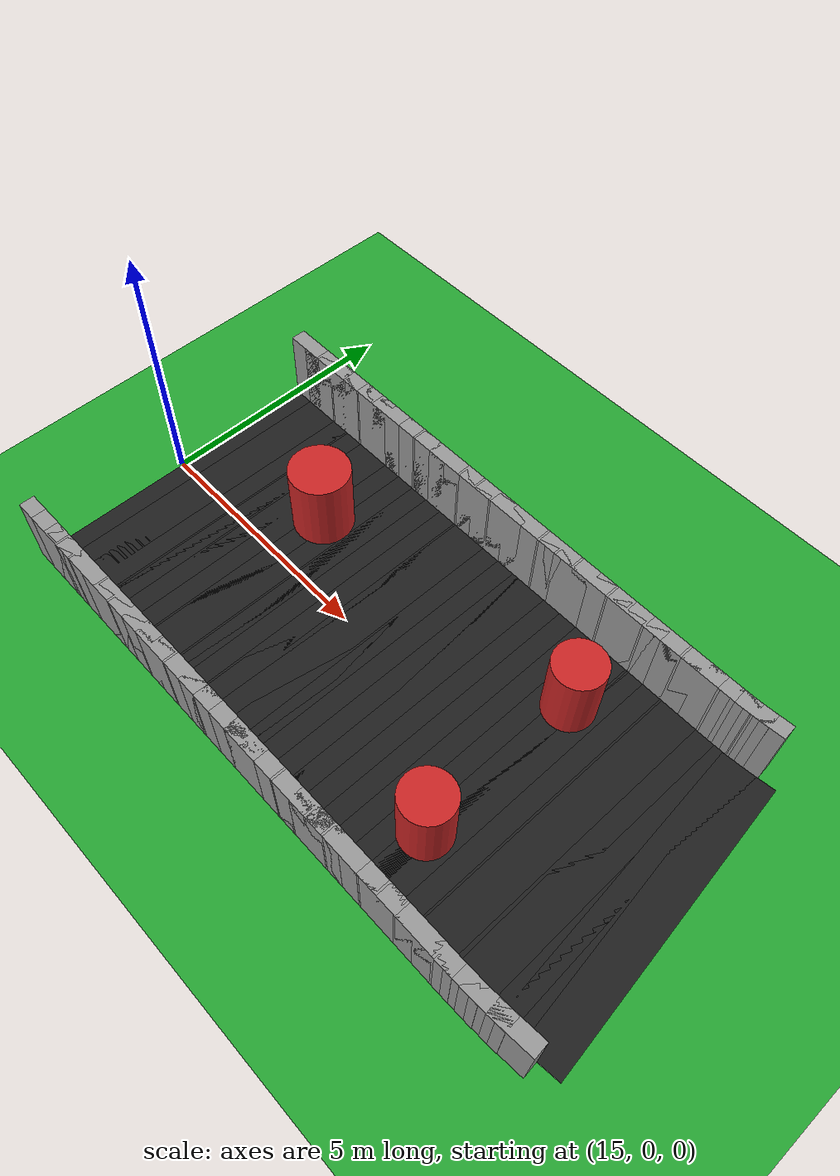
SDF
<sdf version="1.6">
 <world name="obstacle_mid">
  <include><uri>model://sun</uri></include>
  <model name="ground_plane">
   <static>true</static>
   <link name="link">
    <collision name="collision">
     <surface><friction><ode><mu>100</mu><mu2>50</mu2></ode></friction></surface>
     <geometry><plane><normal>0 0 1</normal><size>120 120</size></plane></geometry>
    </collision>
    <visual name="visual">
     <geometry><plane><normal>0 0 1</normal><size>120 120</size></plane></geometry>
     <material>
      <script><uri>file://media/materials/scripts/gazebo.material</uri><name>Gazebo/Green</name></script>
     </material>
    </visual>
   </link>
  </model>
  <model name="asphalt_38">
   <static>true</static>
   <pose>15.400 0.000 0.005 0 0 0.00000</pose>
   <link name="link">
    <visual name="visual">
     <geometry><box><size>0.760 6.000 0.010</size></box></geometry>
     <material>
      <script><uri>file://media/materials/scripts/gazebo.material</uri><name>Gazebo/Black</name></script>
     </material>
    </visual>
   </link>
  </model>
  <model name="curbL_38">
   <static>true</static>
   <pose>15.400 3.150 0.750 0 0 0.00000</pose>
   <link name="link">
    <collision name="collision"><geometry><box><size>0.760 0.300 1.500</size></box></geometry></collision>
    <visual name="visual">
     <geometry><box><size>0.760 0.300 1.500</size></box></geometry>
     <material>
      <script><uri>file://media/materials/scripts/gazebo.material</uri><name>Gazebo/Grey</name></script>
     </material>
    </visual>
   </link>
  </model>
  <model name="curbR_38">
   <static>true</static>
   <pose>15.400 -3.150 0.750 0 0 0.00000</pose>
   <link name="link">
    <collision name="collision"><geometry><box><size>0.760 0.300 1.500</size></box></geometry></collision>
    <visual name="visual">
     <geometry><box><size>0.760 0.300 1.500</size></box></geometry>
     <material>
      <script><uri>file://media/materials/scripts/gazebo.material</uri><name>Gazebo/Grey</name></script>
     </material>
    </visual>
   </link>
  </model>
  <model name="asphalt_39">
   <static>true</static>
   <pose>15.800 0.000 0.005 0 0 0.00000</pose>
   <link name="link">
    <visual name="visual">
     <geometry><box><size>0.760 6.000 0.010</size></box></geometry>
     <material>
      <script><uri>file://media/materials/scripts/gazebo.material</uri><name>Gazebo/Black</name></script>
     </material>
    </visual>
   </link>
  </model>
  <model name="curbL_39">
   <static>true</static>
   <pose>15.800 3.150 0.750 0 0 0.00000</pose>
   <link name="link">
    <collision name="collision"><geometry><box><size>0.760 0.300 1.500</size></box></geometry></collision>
    <visual name="visual">
     <geometry><box><size>0.760 0.300 1.500</size></box></geometry>
     <material>
      <script><uri>file://media/materials/scripts/gazebo.material</uri><name>Gazebo/Grey</name></script>
     </material>
    </visual>
   </link>
  </model>
  <model name="curbR_39">
   <static>true</static>
   <pose>15.800 -3.150 0.750 0 0 0.00000</pose>
   <link name="link">
    <collision name="collision"><geometry><box><size>0.760 0.300 1.500</size></box></geometry></collision>
    <visual name="visual">
     <geometry><box><size>0.760 0.300 1.500</size></box></geometry>
     <material>
      <script><uri>file://media/materials/scripts/gazebo.material</uri><name>Gazebo/Grey</name></script>
     </material>
    </visual>
   </link>
  </model>
  <model name="asphalt_40">
   <static>true</static>
   <pose>16.200 0.000 0.005 0 0 0.00000</pose>
   <link name="link">
    <visual name="visual">
     <geometry><box><size>0.760 6.000 0.010</size></box></geometry>
     <material>
      <script><uri>file://media/materials/scripts/gazebo.material</uri><name>Gazebo/Black</name></script>
     </material>
    </visual>
   </link>
  </model>
  <model name="curbL_40">
   <static>true</static>
   <pose>16.200 3.150 0.750 0 0 0.00000</pose>
   <link name="link">
    <collision name="collision"><geometry><box><size>0.760 0.300 1.500</size></box></geometry></collision>
    <visual name="visual">
     <geometry><box><size>0.760 0.300 1.500</size></box></geometry>
     <material>
      <script><uri>file://media/materials/scripts/gazebo.material</uri><name>Gazebo/Grey</name></script>
     </material>
    </visual>
   </link>
  </model>
  <model name="curbR_40">
   <static>true</static>
   <pose>16.200 -3.150 0.750 0 0 0.00000</pose>
   <link name="link">
    <collision name="collision"><geometry><box><size>0.760 0.300 1.500</size></box></geometry></collision>
    <visual name="visual">
     <geometry><box><size>0.760 0.300 1.500</size></box></geometry>
     <material>
      <script><uri>file://media/materials/scripts/gazebo.material</uri><name>Gazebo/Grey</name></script>
     </material>
    </visual>
   </link>
  </model>
  <model name="asphalt_41">
   <static>true</static>
   <pose>16.600 0.000 0.005 0 0 0.00000</pose>
   <link name="link">
    <visual name="visual">
     <geometry><box><size>0.760 6.000 0.010</size></box></geometry>
     <material>
      <script><uri>file://media/materials/scripts/gazebo.material</uri><name>Gazebo/Black</name></script>
     </material>
    </visual>
   </link>
  </model>
  <model name="curbL_41">
   <static>true</static>
   <pose>16.600 3.150 0.750 0 0 0.00000</pose>
   <link name="link">
    <collision name="collision"><geometry><box><size>0.760 0.300 1.500</size></box></geometry></collision>
    <visual name="visual">
     <geometry><box><size>0.760 0.300 1.500</size></box></geometry>
     <material>
      <script><uri>file://media/materials/scripts/gazebo.material</uri><name>Gazebo/Grey</name></script>
     </material>
    </visual>
   </link>
  </model>
  <model name="curbR_41">
   <static>true</static>
   <pose>16.600 -3.150 0.750 0 0 0.00000</pose>
   <link name="link">
    <collision name="collision"><geometry><box><size>0.760 0.300 1.500</size></box></geometry></collision>
    <visual name="visual">
     <geometry><box><size>0.760 0.300 1.500</size></box></geometry>
     <material>
      <script><uri>file://media/materials/scripts/gazebo.material</uri><name>Gazebo/Grey</name></script>
     </material>
    </visual>
   </link>
  </model>
  <model name="asphalt_42">
   <static>true</static>
   <pose>17.000 0.000 0.005 0 0 0.00000</pose>
   <link name="link">
    <visual name="visual">
     <geometry><box><size>0.760 6.000 0.010</size></box></geometry>
     <material>
      <script><uri>file://media/materials/scripts/gazebo.material</uri><name>Gazebo/Black</name></script>
     </material>
    </visual>
   </link>
  </model>
  <model name="curbL_42">
   <static>true</static>
   <pose>17.000 3.150 0.750 0 0 0.00000</pose>
   <link name="link">
    <collision name="collision"><geometry><box><size>0.760 0.300 1.500</size></box></geometry></collision>
    <visual name="visual">
     <geometry><box><size>0.760 0.300 1.500</size></box></geometry>
     <material>
      <script><uri>file://media/materials/scripts/gazebo.material</uri><name>Gazebo/Grey</name></script>
     </material>
    </visual>
   </link>
  </model>
  <model name="curbR_42">
   <static>true</static>
   <pose>17.000 -3.150 0.750 0 0 0.00000</pose>
   <link name="link">
    <collision name="collision"><geometry><box><size>0.760 0.300 1.500</size></box></geometry></collision>
    <visual name="visual">
     <geometry><box><size>0.760 0.300 1.500</size></box></geometry>
     <material>
      <script><uri>file://media/materials/scripts/gazebo.material</uri><name>Gazebo/Grey</name></script>
     </material>
    </visual>
   </link>
  </model>
  <model name="asphalt_43">
   <static>true</static>
   <pose>17.400 0.000 0.005 0 0 0.00000</pose>
   <link name="link">
    <visual name="visual">
     <geometry><box><size>0.760 6.000 0.010</size></box></geometry>
     <material>
      <script><uri>file://media/materials/scripts/gazebo.material</uri><name>Gazebo/Black</name></script>
     </material>
    </visual>
   </link>
  </model>
  <model name="curbL_43">
   <static>true</static>
   <pose>17.400 3.150 0.750 0 0 0.00000</pose>
   <link name="link">
    <collision name="collision"><geometry><box><size>0.760 0.300 1.500</size></box></geometry></collision>
    <visual name="visual">
     <geometry><box><size>0.760 0.300 1.500</size></box></geometry>
     <material>
      <script><uri>file://media/materials/scripts/gazebo.material</uri><name>Gazebo/Grey</name></script>
     </material>
    </visual>
   </link>
  </model>
  <model name="curbR_43">
   <static>true</static>
   <pose>17.400 -3.150 0.750 0 0 0.00000</pose>
   <link name="link">
    <collision name="collision"><geometry><box><size>0.760 0.300 1.500</size></box></geometry></collision>
    <visual name="visual">
     <geometry><box><size>0.760 0.300 1.500</size></box></geometry>
     <material>
      <script><uri>file://media/materials/scripts/gazebo.material</uri><name>Gazebo/Grey</name></script>
     </material>
    </visual>
   </link>
  </model>
  <model name="asphalt_44">
   <static>true</static>
   <pose>17.800 0.000 0.005 0 0 0.00000</pose>
   <link name="link">
    <visual name="visual">
     <geometry><box><size>0.760 6.000 0.010</size></box></geometry>
     <material>
      <script><uri>file://media/materials/scripts/gazebo.material</uri><name>Gazebo/Black</name></script>
     </material>
    </visual>
   </link>
  </model>
  <model name="curbL_44">
   <static>true</static>
   <pose>17.800 3.150 0.750 0 0 0.00000</pose>
   <link name="link">
    <collision name="collision"><geometry><box><size>0.760 0.300 1.500</size></box></geometry></collision>
    <visual name="visual">
     <geometry><box><size>0.760 0.300 1.500</size></box></geometry>
     <material>
      <script><uri>file://media/materials/scripts/gazebo.material</uri><name>Gazebo/Grey</name></script>
     </material>
    </visual>
   </link>
  </model>
  <model name="curbR_44">
   <static>true</static>
   <pose>17.800 -3.150 0.750 0 0 0.00000</pose>
   <link name="link">
    <collision name="collision"><geometry><box><size>0.760 0.300 1.500</size></box></geometry></collision>
    <visual name="visual">
     <geometry><box><size>0.760 0.300 1.500</size></box></geometry>
     <material>
      <script><uri>file://media/materials/scripts/gazebo.material</uri><name>Gazebo/Grey</name></script>
     </material>
    </visual>
   </link>
  </model>
  <model name="asphalt_45">
   <static>true</static>
   <pose>18.200 0.000 0.005 0 0 0.00000</pose>
   <link name="link">
    <visual name="visual">
     <geometry><box><size>0.760 6.000 0.010</size></box></geometry>
     <material>
      <script><uri>file://media/materials/scripts/gazebo.material</uri><name>Gazebo/Black</name></script>
     </material>
    </visual>
   </link>
  </model>
  <model name="curbL_45">
   <static>true</static>
   <pose>18.200 3.150 0.750 0 0 0.00000</pose>
   <link name="link">
    <collision name="collision"><geometry><box><size>0.760 0.300 1.500</size></box></geometry></collision>
    <visual name="visual">
     <geometry><box><size>0.760 0.300 1.500</size></box></geometry>
     <material>
      <script><uri>file://media/materials/scripts/gazebo.material</uri><name>Gazebo/Grey</name></script>
     </material>
    </visual>
   </link>
  </model>
  <model name="curbR_45">
   <static>true</static>
   <pose>18.200 -3.150 0.750 0 0 0.00000</pose>
   <link name="link">
    <collision name="collision"><geometry><box><size>0.760 0.300 1.500</size></box></geometry></collision>
    <visual name="visual">
     <geometry><box><size>0.760 0.300 1.500</size></box></geometry>
     <material>
      <script><uri>file://media/materials/scripts/gazebo.material</uri><name>Gazebo/Grey</name></script>
     </material>
    </visual>
   </link>
  </model>
  <model name="asphalt_46">
   <static>true</static>
   <pose>18.600 0.000 0.005 0 0 0.00000</pose>
   <link name="link">
    <visual name="visual">
     <geometry><box><size>0.760 6.000 0.010</size></box></geometry>
     <material>
      <script><uri>file://media/materials/scripts/gazebo.material</uri><name>Gazebo/Black</name></script>
     </material>
    </visual>
   </link>
  </model>
  <model name="curbL_46">
   <static>true</static>
   <pose>18.600 3.150 0.750 0 0 0.00000</pose>
   <link name="link">
    <collision name="collision"><geometry><box><size>0.760 0.300 1.500</size></box></geometry></collision>
    <visual name="visual">
     <geometry><box><size>0.760 0.300 1.500</size></box></geometry>
     <material>
      <script><uri>file://media/materials/scripts/gazebo.material</uri><name>Gazebo/Grey</name></script>
     </material>
    </visual>
   </link>
  </model>
  <model name="curbR_46">
   <static>true</static>
   <pose>18.600 -3.150 0.750 0 0 0.00000</pose>
   <link name="link">
    <collision name="collision"><geometry><box><size>0.760 0.300 1.500</size></box></geometry></collision>
    <visual name="visual">
     <geometry><box><size>0.760 0.300 1.500</size></box></geometry>
     <material>
      <script><uri>file://media/materials/scripts/gazebo.material</uri><name>Gazebo/Grey</name></script>
     </material>
    </visual>
   </link>
  </model>
  <model name="asphalt_47">
   <static>true</static>
   <pose>19.000 0.000 0.005 0 0 0.00000</pose>
   <link name="link">
    <visual name="visual">
     <geometry><box><size>0.760 6.000 0.010</size></box></geometry>
     <material>
      <script><uri>file://media/materials/scripts/gazebo.material</uri><name>Gazebo/Black</name></script>
     </material>
    </visual>
   </link>
  </model>
  <model name="curbL_47">
   <static>true</static>
   <pose>19.000 3.150 0.750 0 0 0.00000</pose>
   <link name="link">
    <collision name="collision"><geometry><box><size>0.760 0.300 1.500</size></box></geometry></collision>
    <visual name="visual">
     <geometry><box><size>0.760 0.300 1.500</size></box></geometry>
     <material>
      <script><uri>file://media/materials/scripts/gazebo.material</uri><name>Gazebo/Grey</name></script>
     </material>
    </visual>
   </link>
  </model>
  <model name="curbR_47">
   <static>true</static>
   <pose>19.000 -3.150 0.750 0 0 0.00000</pose>
   <link name="link">
    <collision name="collision"><geometry><box><size>0.760 0.300 1.500</size></box></geometry></collision>
    <visual name="visual">
     <geometry><box><size>0.760 0.300 1.500</size></box></geometry>
     <material>
      <script><uri>file://media/materials/scripts/gazebo.material</uri><name>Gazebo/Grey</name></script>
     </material>
    </visual>
   </link>
  </model>
  <model name="asphalt_48">
   <static>true</static>
   <pose>19.400 0.000 0.005 0 0 0.00000</pose>
   <link name="link">
    <visual name="visual">
     <geometry><box><size>0.760 6.000 0.010</size></box></geometry>
     <material>
      <script><uri>file://media/materials/scripts/gazebo.material</uri><name>Gazebo/Black</name></script>
     </material>
    </visual>
   </link>
  </model>
  <model name="curbL_48">
   <static>true</static>
   <pose>19.400 3.150 0.750 0 0 0.00000</pose>
   <link name="link">
    <collision name="collision"><geometry><box><size>0.760 0.300 1.500</size></box></geometry></collision>
    <visual name="visual">
     <geometry><box><size>0.760 0.300 1.500</size></box></geometry>
     <material>
      <script><uri>file://media/materials/scripts/gazebo.material</uri><name>Gazebo/Grey</name></script>
     </material>
    </visual>
   </link>
  </model>
  <model name="curbR_48">
   <static>true</static>
   <pose>19.400 -3.150 0.750 0 0 0.00000</pose>
   <link name="link">
    <collision name="collision"><geometry><box><size>0.760 0.300 1.500</size></box></geometry></collision>
    <visual name="visual">
     <geometry><box><size>0.760 0.300 1.500</size></box></geometry>
     <material>
      <script><uri>file://media/materials/scripts/gazebo.material</uri><name>Gazebo/Grey</name></script>
     </material>
    </visual>
   </link>
  </model>
  <model name="asphalt_49">
   <static>true</static>
   <pose>19.800 0.000 0.005 0 0 0.00000</pose>
   <link name="link">
    <visual name="visual">
     <geometry><box><size>0.760 6.000 0.010</size></box></geometry>
     <material>
      <script><uri>file://media/materials/scripts/gazebo.material</uri><name>Gazebo/Black</name></script>
     </material>
    </visual>
   </link>
  </model>
  <model name="curbL_49">
   <static>true</static>
   <pose>19.800 3.150 0.750 0 0 0.00000</pose>
   <link name="link">
    <collision name="collision"><geometry><box><size>0.760 0.300 1.500</size></box></geometry></collision>
    <visual name="visual">
     <geometry><box><size>0.760 0.300 1.500</size></box></geometry>
     <material>
      <script><uri>file://media/materials/scripts/gazebo.material</uri><name>Gazebo/Grey</name></script>
     </material>
    </visual>
   </link>
  </model>
  <model name="curbR_49">
   <static>true</static>
   <pose>19.800 -3.150 0.750 0 0 0.00000</pose>
   <link name="link">
    <collision name="collision"><geometry><box><size>0.760 0.300 1.500</size></box></geometry></collision>
    <visual name="visual">
     <geometry><box><size>0.760 0.300 1.500</size></box></geometry>
     <material>
      <script><uri>file://media/materials/scripts/gazebo.material</uri><name>Gazebo/Grey</name></script>
     </material>
    </visual>
   </link>
  </model>
  <model name="asphalt_50">
   <static>true</static>
   <pose>20.200 0.000 0.005 0 0 0.00000</pose>
   <link name="link">
    <visual name="visual">
     <geometry><box><size>0.760 6.000 0.010</size></box></geometry>
     <material>
      <script><uri>file://media/materials/scripts/gazebo.material</uri><name>Gazebo/Black</name></script>
     </material>
    </visual>
   </link>
  </model>
  <model name="curbL_50">
   <static>true</static>
   <pose>20.200 3.150 0.750 0 0 0.00000</pose>
   <link name="link">
    <collision name="collision"><geometry><box><size>0.760 0.300 1.500</size></box></geometry></collision>
    <visual name="visual">
     <geometry><box><size>0.760 0.300 1.500</size></box></geometry>
     <material>
      <script><uri>file://media/materials/scripts/gazebo.material</uri><name>Gazebo/Grey</name></script>
     </material>
    </visual>
   </link>
  </model>
  <model name="curbR_50">
   <static>true</static>
   <pose>20.200 -3.150 0.750 0 0 0.00000</pose>
   <link name="link">
    <collision name="collision"><geometry><box><size>0.760 0.300 1.500</size></box></geometry></collision>
    <visual name="visual">
     <geometry><box><size>0.760 0.300 1.500</size></box></geometry>
     <material>
      <script><uri>file://media/materials/scripts/gazebo.material</uri><name>Gazebo/Grey</name></script>
     </material>
    </visual>
   </link>
  </model>
  <model name="asphalt_51">
   <static>true</static>
   <pose>20.600 0.000 0.005 0 0 0.00000</pose>
   <link name="link">
    <visual name="visual">
     <geometry><box><size>0.760 6.000 0.010</size></box></geometry>
     <material>
      <script><uri>file://media/materials/scripts/gazebo.material</uri><name>Gazebo/Black</name></script>
     </material>
    </visual>
   </link>
  </model>
  <model name="curbL_51">
   <static>true</static>
   <pose>20.600 3.150 0.750 0 0 0.00000</pose>
   <link name="link">
    <collision name="collision"><geometry><box><size>0.760 0.300 1.500</size></box></geometry></collision>
    <visual name="visual">
     <geometry><box><size>0.760 0.300 1.500</size></box></geometry>
     <material>
      <script><uri>file://media/materials/scripts/gazebo.material</uri><name>Gazebo/Grey</name></script>
     </material>
    </visual>
   </link>
  </model>
  <model name="curbR_51">
   <static>true</static>
   <pose>20.600 -3.150 0.750 0 0 0.00000</pose>
   <link name="link">
    <collision name="collision"><geometry><box><size>0.760 0.300 1.500</size></box></geometry></collision>
    <visual name="visual">
     <geometry><box><size>0.760 0.300 1.500</size></box></geometry>
     <material>
      <script><uri>file://media/materials/scripts/gazebo.material</uri><name>Gazebo/Grey</name></script>
     </material>
    </visual>
   </link>
  </model>
  <model name="asphalt_52">
   <static>true</static>
   <pose>21.000 0.000 0.005 0 0 0.00000</pose>
   <link name="link">
    <visual name="visual">
     <geometry><box><size>0.760 6.000 0.010</size></box></geometry>
     <material>
      <script><uri>file://media/materials/scripts/gazebo.material</uri><name>Gazebo/Black</name></script>
     </material>
    </visual>
   </link>
  </model>
  <model name="curbL_52">
   <static>true</static>
   <pose>21.000 3.150 0.750 0 0 0.00000</pose>
   <link name="link">
    <collision name="collision"><geometry><box><size>0.760 0.300 1.500</size></box></geometry></collision>
    <visual name="visual">
     <geometry><box><size>0.760 0.300 1.500</size></box></geometry>
     <material>
      <script><uri>file://media/materials/scripts/gazebo.material</uri><name>Gazebo/Grey</name></script>
     </material>
    </visual>
   </link>
  </model>
  <model name="curbR_52">
   <static>true</static>
   <pose>21.000 -3.150 0.750 0 0 0.00000</pose>
   <link name="link">
    <collision name="collision"><geometry><box><size>0.760 0.300 1.500</size></box></geometry></collision>
    <visual name="visual">
     <geometry><box><size>0.760 0.300 1.500</size></box></geometry>
     <material>
      <script><uri>file://media/materials/scripts/gazebo.material</uri><name>Gazebo/Grey</name></script>
     </material>
    </visual>
   </link>
  </model>
  <model name="asphalt_53">
   <static>true</static>
   <pose>21.400 0.000 0.005 0 0 0.00000</pose>
   <link name="link">
    <visual name="visual">
     <geometry><box><size>0.760 6.000 0.010</size></box></geometry>
     <material>
      <script><uri>file://media/materials/scripts/gazebo.material</uri><name>Gazebo/Black</name></script>
     </material>
    </visual>
   </link>
  </model>
  <model name="curbL_53">
   <static>true</static>
   <pose>21.400 3.150 0.750 0 0 0.00000</pose>
   <link name="link">
    <collision name="collision"><geometry><box><size>0.760 0.300 1.500</size></box></geometry></collision>
    <visual name="visual">
     <geometry><box><size>0.760 0.300 1.500</size></box></geometry>
     <material>
      <script><uri>file://media/materials/scripts/gazebo.material</uri><name>Gazebo/Grey</name></script>
     </material>
    </visual>
   </link>
  </model>
  <model name="curbR_53">
   <static>true</static>
   <pose>21.400 -3.150 0.750 0 0 0.00000</pose>
   <link name="link">
    <collision name="collision"><geometry><box><size>0.760 0.300 1.500</size></box></geometry></collision>
    <visual name="visual">
     <geometry><box><size>0.760 0.300 1.500</size></box></geometry>
     <material>
      <script><uri>file://media/materials/scripts/gazebo.material</uri><name>Gazebo/Grey</name></script>
     </material>
    </visual>
   </link>
  </model>
  <model name="asphalt_54">
   <static>true</static>
   <pose>21.800 0.000 0.005 0 0 0.00000</pose>
   <link name="link">
    <visual name="visual">
     <geometry><box><size>0.760 6.000 0.010</size></box></geometry>
     <material>
      <script><uri>file://media/materials/scripts/gazebo.material</uri><name>Gazebo/Black</name></script>
     </material>
    </visual>
   </link>
  </model>
  <model name="curbL_54">
   <static>true</static>
   <pose>21.800 3.150 0.750 0 0 0.00000</pose>
   <link name="link">
    <collision name="collision"><geometry><box><size>0.760 0.300 1.500</size></box></geometry></collision>
    <visual name="visual">
     <geometry><box><size>0.760 0.300 1.500</size></box></geometry>
     <material>
      <script><uri>file://media/materials/scripts/gazebo.material</uri><name>Gazebo/Grey</name></script>
     </material>
    </visual>
   </link>
  </model>
  <model name="curbR_54">
   <static>true</static>
   <pose>21.800 -3.150 0.750 0 0 0.00000</pose>
   <link name="link">
    <collision name="collision"><geometry><box><size>0.760 0.300 1.500</size></box></geometry></collision>
    <visual name="visual">
     <geometry><box><size>0.760 0.300 1.500</size></box></geometry>
     <material>
      <script><uri>file://media/materials/scripts/gazebo.material</uri><name>Gazebo/Grey</name></script>
     </material>
    </visual>
   </link>
  </model>
  <model name="asphalt_55">
   <static>true</static>
   <pose>22.200 0.000 0.005 0 0 0.00000</pose>
   <link name="link">
    <visual name="visual">
     <geometry><box><size>0.760 6.000 0.010</size></box></geometry>
     <material>
      <script><uri>file://media/materials/scripts/gazebo.material</uri><name>Gazebo/Black</name></script>
     </material>
    </visual>
   </link>
  </model>
  <model name="curbL_55">
   <static>true</static>
   <pose>22.200 3.150 0.750 0 0 0.00000</pose>
   <link name="link">
    <collision name="collision"><geometry><box><size>0.760 0.300 1.500</size></box></geometry></collision>
    <visual name="visual">
     <geometry><box><size>0.760 0.300 1.500</size></box></geometry>
     <material>
      <script><uri>file://media/materials/scripts/gazebo.material</uri><name>Gazebo/Grey</name></script>
     </material>
    </visual>
   </link>
  </model>
  <model name="curbR_55">
   <static>true</static>
   <pose>22.200 -3.150 0.750 0 0 0.00000</pose>
   <link name="link">
    <collision name="collision"><geometry><box><size>0.760 0.300 1.500</size></box></geometry></collision>
    <visual name="visual">
     <geometry><box><size>0.760 0.300 1.500</size></box></geometry>
     <material>
      <script><uri>file://media/materials/scripts/gazebo.material</uri><name>Gazebo/Grey</name></script>
     </material>
    </visual>
   </link>
  </model>
  <model name="asphalt_56">
   <static>true</static>
   <pose>22.600 0.000 0.005 0 0 0.00000</pose>
   <link name="link">
    <visual name="visual">
     <geometry><box><size>0.760 6.000 0.010</size></box></geometry>
     <material>
      <script><uri>file://media/materials/scripts/gazebo.material</uri><name>Gazebo/Black</name></script>
     </material>
    </visual>
   </link>
  </model>
  <model name="curbL_56">
   <static>true</static>
   <pose>22.600 3.150 0.750 0 0 0.00000</pose>
   <link name="link">
    <collision name="collision"><geometry><box><size>0.760 0.300 1.500</size></box></geometry></collision>
    <visual name="visual">
     <geometry><box><size>0.760 0.300 1.500</size></box></geometry>
     <material>
      <script><uri>file://media/materials/scripts/gazebo.material</uri><name>Gazebo/Grey</name></script>
     </material>
    </visual>
   </link>
  </model>
  <model name="curbR_56">
   <static>true</static>
   <pose>22.600 -3.150 0.750 0 0 0.00000</pose>
   <link name="link">
    <collision name="collision"><geometry><box><size>0.760 0.300 1.500</size></box></geometry></collision>
    <visual name="visual">
     <geometry><box><size>0.760 0.300 1.500</size></box></geometry>
     <material>
      <script><uri>file://media/materials/scripts/gazebo.material</uri><name>Gazebo/Grey</name></script>
     </material>
    </visual>
   </link>
  </model>
  <model name="asphalt_57">
   <static>true</static>
   <pose>23.000 0.000 0.005 0 0 0.00000</pose>
   <link name="link">
    <visual name="visual">
     <geometry><box><size>0.760 6.000 0.010</size></box></geometry>
     <material>
      <script><uri>file://media/materials/scripts/gazebo.material</uri><name>Gazebo/Black</name></script>
     </material>
    </visual>
   </link>
  </model>
  <model name="curbL_57">
   <static>true</static>
   <pose>23.000 3.150 0.750 0 0 0.00000</pose>
   <link name="link">
    <collision name="collision"><geometry><box><size>0.760 0.300 1.500</size></box></geometry></collision>
    <visual name="visual">
     <geometry><box><size>0.760 0.300 1.500</size></box></geometry>
     <material>
      <script><uri>file://media/materials/scripts/gazebo.material</uri><name>Gazebo/Grey</name></script>
     </material>
    </visual>
   </link>
  </model>
  <model name="curbR_57">
   <static>true</static>
   <pose>23.000 -3.150 0.750 0 0 0.00000</pose>
   <link name="link">
    <collision name="collision"><geometry><box><size>0.760 0.300 1.500</size></box></geometry></collision>
    <visual name="visual">
     <geometry><box><size>0.760 0.300 1.500</size></box></geometry>
     <material>
      <script><uri>file://media/materials/scripts/gazebo.material</uri><name>Gazebo/Grey</name></script>
     </material>
    </visual>
   </link>
  </model>
  <model name="asphalt_58">
   <static>true</static>
   <pose>23.400 0.000 0.005 0 0 0.00000</pose>
   <link name="link">
    <visual name="visual">
     <geometry><box><size>0.760 6.000 0.010</size></box></geometry>
     <material>
      <script><uri>file://media/materials/scripts/gazebo.material</uri><name>Gazebo/Black</name></script>
     </material>
    </visual>
   </link>
  </model>
  <model name="curbL_58">
   <static>true</static>
   <pose>23.400 3.150 0.750 0 0 0.00000</pose>
   <link name="link">
    <collision name="collision"><geometry><box><size>0.760 0.300 1.500</size></box></geometry></collision>
    <visual name="visual">
     <geometry><box><size>0.760 0.300 1.500</size></box></geometry>
     <material>
      <script><uri>file://media/materials/scripts/gazebo.material</uri><name>Gazebo/Grey</name></script>
     </material>
    </visual>
   </link>
  </model>
  <model name="curbR_58">
   <static>true</static>
   <pose>23.400 -3.150 0.750 0 0 0.00000</pose>
   <link name="link">
    <collision name="collision"><geometry><box><size>0.760 0.300 1.500</size></box></geometry></collision>
    <visual name="visual">
     <geometry><box><size>0.760 0.300 1.500</size></box></geometry>
     <material>
      <script><uri>file://media/materials/scripts/gazebo.material</uri><name>Gazebo/Grey</name></script>
     </material>
    </visual>
   </link>
  </model>
  <model name="asphalt_59">
   <static>true</static>
   <pose>23.800 0.000 0.005 0 0 0.00000</pose>
   <link name="link">
    <visual name="visual">
     <geometry><box><size>0.760 6.000 0.010</size></box></geometry>
     <material>
      <script><uri>file://media/materials/scripts/gazebo.material</uri><name>Gazebo/Black</name></script>
     </material>
    </visual>
   </link>
  </model>
  <model name="curbL_59">
   <static>true</static>
   <pose>23.800 3.150 0.750 0 0 0.00000</pose>
   <link name="link">
    <collision name="collision"><geometry><box><size>0.760 0.300 1.500</size></box></geometry></collision>
    <visual name="visual">
     <geometry><box><size>0.760 0.300 1.500</size></box></geometry>
     <material>
      <script><uri>file://media/materials/scripts/gazebo.material</uri><name>Gazebo/Grey</name></script>
     </material>
    </visual>
   </link>
  </model>
  <model name="curbR_59">
   <static>true</static>
   <pose>23.800 -3.150 0.750 0 0 0.00000</pose>
   <link name="link">
    <collision name="collision"><geometry><box><size>0.760 0.300 1.500</size></box></geometry></collision>
    <visual name="visual">
     <geometry><box><size>0.760 0.300 1.500</size></box></geometry>
     <material>
      <script><uri>file://media/materials/scripts/gazebo.material</uri><name>Gazebo/Grey</name></script>
     </material>
    </visual>
   </link>
  </model>
  <model name="asphalt_60">
   <static>true</static>
   <pose>24.200 0.000 0.005 0 0 0.00000</pose>
   <link name="link">
    <visual name="visual">
     <geometry><box><size>0.760 6.000 0.010</size></box></geometry>
     <material>
      <script><uri>file://media/materials/scripts/gazebo.material</uri><name>Gazebo/Black</name></script>
     </material>
    </visual>
   </link>
  </model>
  <model name="curbL_60">
   <static>true</static>
   <pose>24.200 3.150 0.750 0 0 0.00000</pose>
   <link name="link">
    <collision name="collision"><geometry><box><size>0.760 0.300 1.500</size></box></geometry></collision>
    <visual name="visual">
     <geometry><box><size>0.760 0.300 1.500</size></box></geometry>
     <material>
      <script><uri>file://media/materials/scripts/gazebo.material</uri><name>Gazebo/Grey</name></script>
     </material>
    </visual>
   </link>
  </model>
  <model name="curbR_60">
   <static>true</static>
   <pose>24.200 -3.150 0.750 0 0 0.00000</pose>
   <link name="link">
    <collision name="collision"><geometry><box><size>0.760 0.300 1.500</size></box></geometry></collision>
    <visual name="visual">
     <geometry><box><size>0.760 0.300 1.500</size></box></geometry>
     <material>
      <script><uri>file://media/materials/scripts/gazebo.material</uri><name>Gazebo/Grey</name></script>
     </material>
    </visual>
   </link>
  </model>
  <model name="asphalt_61">
   <static>true</static>
   <pose>24.600 0.000 0.005 0 0 0.00000</pose>
   <link name="link">
    <visual name="visual">
     <geometry><box><size>0.760 6.000 0.010</size></box></geometry>
     <material>
      <script><uri>file://media/materials/scripts/gazebo.material</uri><name>Gazebo/Black</name></script>
     </material>
    </visual>
   </link>
  </model>
  <model name="curbL_61">
   <static>true</static>
   <pose>24.600 3.150 0.750 0 0 0.00000</pose>
   <link name="link">
    <collision name="collision"><geometry><box><size>0.760 0.300 1.500</size></box></geometry></collision>
    <visual name="visual">
     <geometry><box><size>0.760 0.300 1.500</size></box></geometry>
     <material>
      <script><uri>file://media/materials/scripts/gazebo.material</uri><name>Gazebo/Grey</name></script>
     </material>
    </visual>
   </link>
  </model>
  <model name="curbR_61">
   <static>true</static>
   <pose>24.600 -3.150 0.750 0 0 0.00000</pose>
   <link name="link">
    <collision name="collision"><geometry><box><size>0.760 0.300 1.500</size></box></geometry></collision>
    <visual name="visual">
     <geometry><box><size>0.760 0.300 1.500</size></box></geometry>
     <material>
      <script><uri>file://media/materials/scripts/gazebo.material</uri><name>Gazebo/Grey</name></script>
     </material>
    </visual>
   </link>
  </model>
  <model name="asphalt_62">
   <static>true</static>
   <pose>25.000 0.000 0.005 0 0 0.00000</pose>
   <link name="link">
    <visual name="visual">
     <geometry><box><size>0.760 6.000 0.010</size></box></geometry>
     <material>
      <script><uri>file://media/materials/scripts/gazebo.material</uri><name>Gazebo/Black</name></script>
     </material>
    </visual>
   </link>
  </model>
  <model name="curbL_62">
   <static>true</static>
   <pose>25.000 3.150 0.750 0 0 0.00000</pose>
   <link name="link">
    <collision name="collision"><geometry><box><size>0.760 0.300 1.500</size></box></geometry></collision>
    <visual name="visual">
     <geometry><box><size>0.760 0.300 1.500</size></box></geometry>
     <material>
      <script><uri>file://media/materials/scripts/gazebo.material</uri><name>Gazebo/Grey</name></script>
     </material>
    </visual>
   </link>
  </model>
  <model name="curbR_62">
   <static>true</static>
   <pose>25.000 -3.150 0.750 0 0 0.00000</pose>
   <link name="link">
    <collision name="collision"><geometry><box><size>0.760 0.300 1.500</size></box></geometry></collision>
    <visual name="visual">
     <geometry><box><size>0.760 0.300 1.500</size></box></geometry>
     <material>
      <script><uri>file://media/materials/scripts/gazebo.material</uri><name>Gazebo/Grey</name></script>
     </material>
    </visual>
   </link>
  </model>
  <model name="asphalt_63">
   <static>true</static>
   <pose>25.400 0.000 0.005 0 0 0.00000</pose>
   <link name="link">
    <visual name="visual">
     <geometry><box><size>0.760 6.000 0.010</size></box></geometry>
     <material>
      <script><uri>file://media/materials/scripts/gazebo.material</uri><name>Gazebo/Black</name></script>
     </material>
    </visual>
   </link>
  </model>
  <model name="curbL_63">
   <static>true</static>
   <pose>25.400 3.150 0.750 0 0 0.00000</pose>
   <link name="link">
    <collision name="collision"><geometry><box><size>0.760 0.300 1.500</size></box></geometry></collision>
    <visual name="visual">
     <geometry><box><size>0.760 0.300 1.500</size></box></geometry>
     <material>
      <script><uri>file://media/materials/scripts/gazebo.material</uri><name>Gazebo/Grey</name></script>
     </material>
    </visual>
   </link>
  </model>
  <model name="curbR_63">
   <static>true</static>
   <pose>25.400 -3.150 0.750 0 0 0.00000</pose>
   <link name="link">
    <collision name="collision"><geometry><box><size>0.760 0.300 1.500</size></box></geometry></collision>
    <visual name="visual">
     <geometry><box><size>0.760 0.300 1.500</size></box></geometry>
     <material>
      <script><uri>file://media/materials/scripts/gazebo.material</uri><name>Gazebo/Grey</name></script>
     </material>
    </visual>
   </link>
  </model>
  <model name="asphalt_64">
   <static>true</static>
   <pose>25.800 0.000 0.005 0 0 0.00000</pose>
   <link name="link">
    <visual name="visual">
     <geometry><box><size>0.760 6.000 0.010</size></box></geometry>
     <material>
      <script><uri>file://media/materials/scripts/gazebo.material</uri><name>Gazebo/Black</name></script>
     </material>
    </visual>
   </link>
  </model>
  <model name="curbL_64">
   <static>true</static>
   <pose>25.800 3.150 0.750 0 0 0.00000</pose>
   <link name="link">
    <collision name="collision"><geometry><box><size>0.760 0.300 1.500</size></box></geometry></collision>
    <visual name="visual">
     <geometry><box><size>0.760 0.300 1.500</size></box></geometry>
     <material>
      <script><uri>file://media/materials/scripts/gazebo.material</uri><name>Gazebo/Grey</name></script>
     </material>
    </visual>
   </link>
  </model>
  <model name="curbR_64">
   <static>true</static>
   <pose>25.800 -3.150 0.750 0 0 0.00000</pose>
   <link name="link">
    <collision name="collision"><geometry><box><size>0.760 0.300 1.500</size></box></geometry></collision>
    <visual name="visual">
     <geometry><box><size>0.760 0.300 1.500</size></box></geometry>
     <material>
      <script><uri>file://media/materials/scripts/gazebo.material</uri><name>Gazebo/Grey</name></script>
     </material>
    </visual>
   </link>
  </model>
  <model name="asphalt_65">
   <static>true</static>
   <pose>26.196 0.003 0.005 0 0 0.01636</pose>
   <link name="link">
    <visual name="visual">
     <geometry><box><size>0.753 6.000 0.010</size></box></geometry>
     <material>
      <script><uri>file://media/materials/scripts/gazebo.material</uri><name>Gazebo/Black</name></script>
     </material>
    </visual>
   </link>
  </model>
  <model name="curbL_65">
   <static>true</static>
   <pose>26.145 3.152 0.750 0 0 0.01636</pose>
   <link name="link">
    <collision name="collision"><geometry><box><size>0.650 0.300 1.500</size></box></geometry></collision>
    <visual name="visual">
     <geometry><box><size>0.650 0.300 1.500</size></box></geometry>
     <material>
      <script><uri>file://media/materials/scripts/gazebo.material</uri><name>Gazebo/Grey</name></script>
     </material>
    </visual>
   </link>
  </model>
  <model name="curbR_65">
   <static>true</static>
   <pose>26.248 -3.146 0.750 0 0 0.01636</pose>
   <link name="link">
    <collision name="collision"><geometry><box><size>0.856 0.300 1.500</size></box></geometry></collision>
    <visual name="visual">
     <geometry><box><size>0.856 0.300 1.500</size></box></geometry>
     <material>
      <script><uri>file://media/materials/scripts/gazebo.material</uri><name>Gazebo/Grey</name></script>
     </material>
    </visual>
   </link>
  </model>
  <model name="asphalt_66">
   <static>true</static>
   <pose>26.589 0.016 0.005 0 0 0.04909</pose>
   <link name="link">
    <visual name="visual">
     <geometry><box><size>0.753 6.000 0.010</size></box></geometry>
     <material>
      <script><uri>file://media/materials/scripts/gazebo.material</uri><name>Gazebo/Black</name></script>
     </material>
    </visual>
   </link>
  </model>
  <model name="curbL_66">
   <static>true</static>
   <pose>26.434 3.162 0.750 0 0 0.04909</pose>
   <link name="link">
    <collision name="collision"><geometry><box><size>0.650 0.300 1.500</size></box></geometry></collision>
    <visual name="visual">
     <geometry><box><size>0.650 0.300 1.500</size></box></geometry>
     <material>
      <script><uri>file://media/materials/scripts/gazebo.material</uri><name>Gazebo/Grey</name></script>
     </material>
    </visual>
   </link>
  </model>
  <model name="curbR_66">
   <static>true</static>
   <pose>26.743 -3.130 0.750 0 0 0.04909</pose>
   <link name="link">
    <collision name="collision"><geometry><box><size>0.856 0.300 1.500</size></box></geometry></collision>
    <visual name="visual">
     <geometry><box><size>0.856 0.300 1.500</size></box></geometry>
     <material>
      <script><uri>file://media/materials/scripts/gazebo.material</uri><name>Gazebo/Grey</name></script>
     </material>
    </visual>
   </link>
  </model>
  <model name="asphalt_67">
   <static>true</static>
   <pose>26.981 0.042 0.005 0 0 0.08181</pose>
   <link name="link">
    <visual name="visual">
     <geometry><box><size>0.753 6.000 0.010</size></box></geometry>
     <material>
      <script><uri>file://media/materials/scripts/gazebo.material</uri><name>Gazebo/Black</name></script>
     </material>
    </visual>
   </link>
  </model>
  <model name="curbL_67">
   <static>true</static>
   <pose>26.723 3.181 0.750 0 0 0.08181</pose>
   <link name="link">
    <collision name="collision"><geometry><box><size>0.650 0.300 1.500</size></box></geometry></collision>
    <visual name="visual">
     <geometry><box><size>0.650 0.300 1.500</size></box></geometry>
     <material>
      <script><uri>file://media/materials/scripts/gazebo.material</uri><name>Gazebo/Grey</name></script>
     </material>
    </visual>
   </link>
  </model>
  <model name="curbR_67">
   <static>true</static>
   <pose>27.238 -3.097 0.750 0 0 0.08181</pose>
   <link name="link">
    <collision name="collision"><geometry><box><size>0.856 0.300 1.500</size></box></geometry></collision>
    <visual name="visual">
     <geometry><box><size>0.856 0.300 1.500</size></box></geometry>
     <material>
      <script><uri>file://media/materials/scripts/gazebo.material</uri><name>Gazebo/Grey</name></script>
     </material>
    </visual>
   </link>
  </model>
  <model name="asphalt_68">
   <static>true</static>
   <pose>27.371 0.080 0.005 0 0 0.11454</pose>
   <link name="link">
    <visual name="visual">
     <geometry><box><size>0.753 6.000 0.010</size></box></geometry>
     <material>
      <script><uri>file://media/materials/scripts/gazebo.material</uri><name>Gazebo/Black</name></script>
     </material>
    </visual>
   </link>
  </model>
  <model name="obs_1">
   <static>true</static>
   <pose>18.000 1.200 0.750 0 0 0</pose>
   <link name="link">
    <collision name="collision">
     <geometry><cylinder><radius>0.600</radius><length>1.500</length></cylinder></geometry>
    </collision>
    <visual name="visual">
     <geometry><cylinder><radius>0.600</radius><length>1.500</length></cylinder></geometry>
     <material>
      <script><uri>file://media/materials/scripts/gazebo.material</uri><name>Gazebo/Red</name></script>
     </material>
    </visual>
   </link>
  </model>
  <model name="obs_2">
   <static>true</static>
   <pose>24.000 -1.700 0.750 0 0 0</pose>
   <link name="link">
    <collision name="collision">
     <geometry><cylinder><radius>0.500</radius><length>1.500</length></cylinder></geometry>
    </collision>
    <visual name="visual">
     <geometry><cylinder><radius>0.500</radius><length>1.500</length></cylinder></geometry>
     <material>
      <script><uri>file://media/materials/scripts/gazebo.material</uri><name>Gazebo/Red</name></script>
     </material>
    </visual>
   </link>
  </model>
  <model name="obs_3">
   <static>true</static>
   <pose>24.000 1.700 0.750 0 0 0</pose>
   <link name="link">
    <collision name="collision">
     <geometry><cylinder><radius>0.500</radius><length>1.500</length></cylinder></geometry>
    </collision>
    <visual name="visual">
     <geometry><cylinder><radius>0.500</radius><length>1.500</length></cylinder></geometry>
     <material>
      <script><uri>file://media/materials/scripts/gazebo.material</uri><name>Gazebo/Red</name></script>
     </material>
    </visual>
   </link>
  </model>
 </world>
</sdf>
